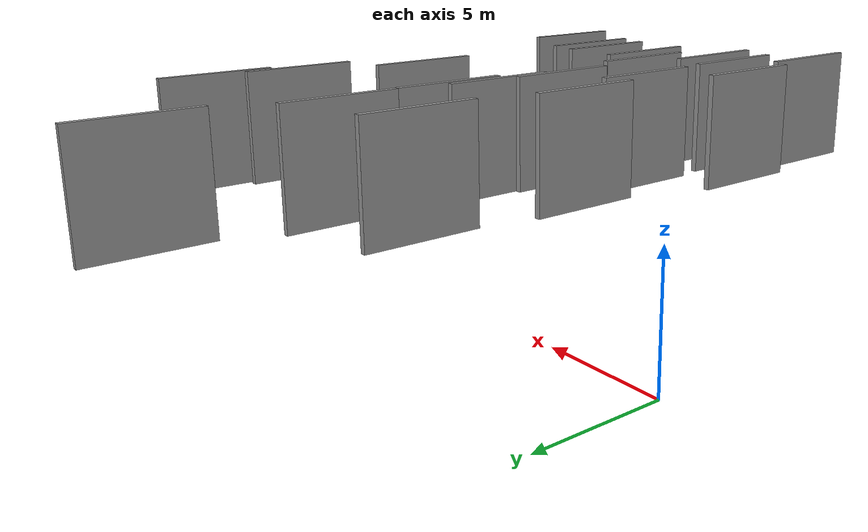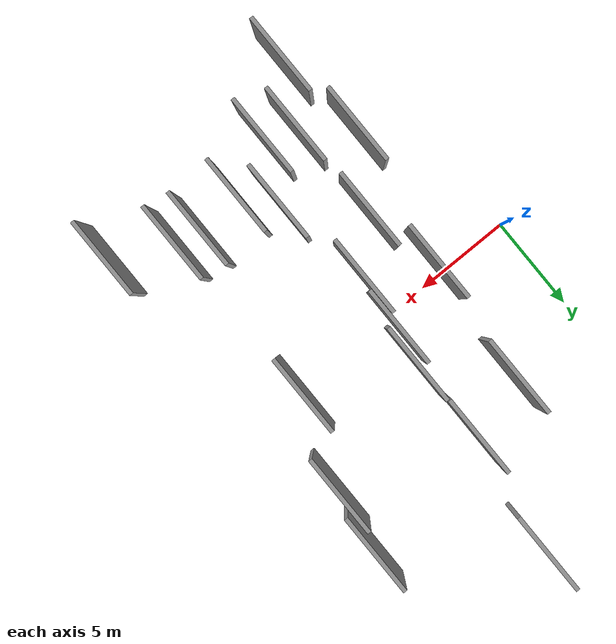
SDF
<sdf version="1.6">
 <world name="default">
  <scene>
   <sky><clouds><speed>12</speed></clouds></sky>
   <ambient>0.4 0.4 0.4 1</ambient>
   <background>0.7 0.7 0.7 1</background>
   <shadows>1</shadows>
  </scene>
  <gravity>0 0 -9.8066</gravity>
  <magnetic_field>6e-06 2.3e-05 -4.2e-05</magnetic_field>
  <physics default="0" name="default_physics" type="ode">
   <ode>
    <solver>
     <type>quick</type>
     <iters>10</iters>
     <sor>1.0</sor>
     <use_dynamic_moi_rescaling>0</use_dynamic_moi_rescaling>
    </solver>
    <constraints>
     <cfm>0</cfm>
     <erp>0.2</erp>
     <contact_max_correcting_vel>100</contact_max_correcting_vel>
     <contact_surface_layer>0.001</contact_surface_layer>
    </constraints>
   </ode>
   <max_step_size>0.004</max_step_size>
   <real_time_factor>1</real_time_factor>
   <real_time_update_rate>250</real_time_update_rate>
  </physics>
  <light name="sun" type="directional">
   <pose>0 0 10 0 0 0</pose>
   <diffuse>0.8 0.8 0.8 1</diffuse>
   <specular>0.2 0.2 0.2 1</specular>
   <attenuation>
    <range>1000</range>
    <constant>0.9</constant>
    <linear>0.01</linear>
    <quadratic>0.001</quadratic>
   </attenuation>
   <direction>-0.5 0.1 -0.9</direction>
  </light>
  <model name="grey_wall_1">
   <static>1</static>
   <pose>7.6312 6.1626 5.0 0.000000 0.000000 1.570796</pose>
   <link name="link">
    <pose>0 0 2.00 0 0 0</pose>
    <collision name="collision"><geometry><box><size>4.00 0.2 4.00</size></box></geometry></collision>
    <visual name="visual">
     <cast_shadows>0</cast_shadows>
     <geometry><box><size>4.00 0.2 4.00</size></box></geometry>
     <material>
      <script>
       <uri>model://grey_wall/materials/scripts</uri>
       <uri>model://grey_wall/materials/textures</uri>
       <name>vrc/grey_wall</name>
      </script>
     </material>
    </visual>
   </link>
  </model>
  <model name="grey_wall_2">
   <static>1</static>
   <pose>14.2399 7.2748 5.0 0.000000 0.000000 1.570796</pose>
   <link name="link">
    <pose>0 0 2.00 0 0 0</pose>
    <collision name="collision"><geometry><box><size>4.00 0.2 4.00</size></box></geometry></collision>
    <visual name="visual">
     <cast_shadows>0</cast_shadows>
     <geometry><box><size>4.00 0.2 4.00</size></box></geometry>
     <material>
      <script>
       <uri>model://grey_wall/materials/scripts</uri>
       <uri>model://grey_wall/materials/textures</uri>
       <name>vrc/grey_wall</name>
      </script>
     </material>
    </visual>
   </link>
  </model>
  <model name="grey_wall_3">
   <static>1</static>
   <pose>15.2729 -9.9006 5.0 0.000000 0.000000 1.570796</pose>
   <link name="link">
    <pose>0 0 2.00 0 0 0</pose>
    <collision name="collision"><geometry><box><size>4.00 0.2 4.00</size></box></geometry></collision>
    <visual name="visual">
     <cast_shadows>0</cast_shadows>
     <geometry><box><size>4.00 0.2 4.00</size></box></geometry>
     <material>
      <script>
       <uri>model://grey_wall/materials/scripts</uri>
       <uri>model://grey_wall/materials/textures</uri>
       <name>vrc/grey_wall</name>
      </script>
     </material>
    </visual>
   </link>
  </model>
  <model name="grey_wall_4">
   <static>1</static>
   <pose>12.3508 0.0581 5.0 0.000000 0.000000 1.570796</pose>
   <link name="link">
    <pose>0 0 2.00 0 0 0</pose>
    <collision name="collision"><geometry><box><size>4.00 0.2 4.00</size></box></geometry></collision>
    <visual name="visual">
     <cast_shadows>0</cast_shadows>
     <geometry><box><size>4.00 0.2 4.00</size></box></geometry>
     <material>
      <script>
       <uri>model://grey_wall/materials/scripts</uri>
       <uri>model://grey_wall/materials/textures</uri>
       <name>vrc/grey_wall</name>
      </script>
     </material>
    </visual>
   </link>
  </model>
  <model name="grey_wall_5">
   <static>1</static>
   <pose>7.6979 2.1255 5.0 0.000000 0.000000 1.570796</pose>
   <link name="link">
    <pose>0 0 2.00 0 0 0</pose>
    <collision name="collision"><geometry><box><size>4.00 0.2 4.00</size></box></geometry></collision>
    <visual name="visual">
     <cast_shadows>0</cast_shadows>
     <geometry><box><size>4.00 0.2 4.00</size></box></geometry>
     <material>
      <script>
       <uri>model://grey_wall/materials/scripts</uri>
       <uri>model://grey_wall/materials/textures</uri>
       <name>vrc/grey_wall</name>
      </script>
     </material>
    </visual>
   </link>
  </model>
  <model name="grey_wall_6">
   <static>1</static>
   <pose>7.9271 -7.0388 5.0 0.000000 0.000000 1.570796</pose>
   <link name="link">
    <pose>0 0 2.00 0 0 0</pose>
    <collision name="collision"><geometry><box><size>4.00 0.2 4.00</size></box></geometry></collision>
    <visual name="visual">
     <cast_shadows>0</cast_shadows>
     <geometry><box><size>4.00 0.2 4.00</size></box></geometry>
     <material>
      <script>
       <uri>model://grey_wall/materials/scripts</uri>
       <uri>model://grey_wall/materials/textures</uri>
       <name>vrc/grey_wall</name>
      </script>
     </material>
    </visual>
   </link>
  </model>
  <model name="grey_wall_7">
   <static>1</static>
   <pose>6.6702 -9.6324 5.0 0.000000 0.000000 1.570796</pose>
   <link name="link">
    <pose>0 0 2.00 0 0 0</pose>
    <collision name="collision"><geometry><box><size>4.00 0.2 4.00</size></box></geometry></collision>
    <visual name="visual">
     <cast_shadows>0</cast_shadows>
     <geometry><box><size>4.00 0.2 4.00</size></box></geometry>
     <material>
      <script>
       <uri>model://grey_wall/materials/scripts</uri>
       <uri>model://grey_wall/materials/textures</uri>
       <name>vrc/grey_wall</name>
      </script>
     </material>
    </visual>
   </link>
  </model>
  <model name="grey_wall_8">
   <static>1</static>
   <pose>5.1009 -4.2955 5.0 0.000000 0.000000 1.570796</pose>
   <link name="link">
    <pose>0 0 2.00 0 0 0</pose>
    <collision name="collision"><geometry><box><size>4.00 0.2 4.00</size></box></geometry></collision>
    <visual name="visual">
     <cast_shadows>0</cast_shadows>
     <geometry><box><size>4.00 0.2 4.00</size></box></geometry>
     <material>
      <script>
       <uri>model://grey_wall/materials/scripts</uri>
       <uri>model://grey_wall/materials/textures</uri>
       <name>vrc/grey_wall</name>
      </script>
     </material>
    </visual>
   </link>
  </model>
  <model name="grey_wall_9">
   <static>1</static>
   <pose>11.3215 -8.3103 5.0 0.000000 0.000000 1.570796</pose>
   <link name="link">
    <pose>0 0 2.00 0 0 0</pose>
    <collision name="collision"><geometry><box><size>4.00 0.2 4.00</size></box></geometry></collision>
    <visual name="visual">
     <cast_shadows>0</cast_shadows>
     <geometry><box><size>4.00 0.2 4.00</size></box></geometry>
     <material>
      <script>
       <uri>model://grey_wall/materials/scripts</uri>
       <uri>model://grey_wall/materials/textures</uri>
       <name>vrc/grey_wall</name>
      </script>
     </material>
    </visual>
   </link>
  </model>
  <model name="grey_wall_10">
   <static>1</static>
   <pose>3.8768 -11.8132 5.0 0.000000 0.000000 1.570796</pose>
   <link name="link">
    <pose>0 0 2.00 0 0 0</pose>
    <collision name="collision"><geometry><box><size>4.00 0.2 4.00</size></box></geometry></collision>
    <visual name="visual">
     <cast_shadows>0</cast_shadows>
     <geometry><box><size>4.00 0.2 4.00</size></box></geometry>
     <material>
      <script>
       <uri>model://grey_wall/materials/scripts</uri>
       <uri>model://grey_wall/materials/textures</uri>
       <name>vrc/grey_wall</name>
      </script>
     </material>
    </visual>
   </link>
  </model>
  <model name="grey_wall_11">
   <static>1</static>
   <pose>13.8396 4.3691 5.0 0.000000 0.000000 1.570796</pose>
   <link name="link">
    <pose>0 0 2.00 0 0 0</pose>
    <collision name="collision"><geometry><box><size>4.00 0.2 4.00</size></box></geometry></collision>
    <visual name="visual">
     <cast_shadows>0</cast_shadows>
     <geometry><box><size>4.00 0.2 4.00</size></box></geometry>
     <material>
      <script>
       <uri>model://grey_wall/materials/scripts</uri>
       <uri>model://grey_wall/materials/textures</uri>
       <name>vrc/grey_wall</name>
      </script>
     </material>
    </visual>
   </link>
  </model>
  <model name="grey_wall_12">
   <static>1</static>
   <pose>4.6870 5.2621 5.0 0.000000 0.000000 1.570796</pose>
   <link name="link">
    <pose>0 0 2.00 0 0 0</pose>
    <collision name="collision"><geometry><box><size>4.00 0.2 4.00</size></box></geometry></collision>
    <visual name="visual">
     <cast_shadows>0</cast_shadows>
     <geometry><box><size>4.00 0.2 4.00</size></box></geometry>
     <material>
      <script>
       <uri>model://grey_wall/materials/scripts</uri>
       <uri>model://grey_wall/materials/textures</uri>
       <name>vrc/grey_wall</name>
      </script>
     </material>
    </visual>
   </link>
  </model>
  <model name="grey_wall_13">
   <static>1</static>
   <pose>5.2660 -9.1162 5.0 0.000000 0.000000 1.570796</pose>
   <link name="link">
    <pose>0 0 2.00 0 0 0</pose>
    <collision name="collision"><geometry><box><size>4.00 0.2 4.00</size></box></geometry></collision>
    <visual name="visual">
     <cast_shadows>0</cast_shadows>
     <geometry><box><size>4.00 0.2 4.00</size></box></geometry>
     <material>
      <script>
       <uri>model://grey_wall/materials/scripts</uri>
       <uri>model://grey_wall/materials/textures</uri>
       <name>vrc/grey_wall</name>
      </script>
     </material>
    </visual>
   </link>
  </model>
  <model name="grey_wall_14">
   <static>1</static>
   <pose>12.5361 -8.5242 5.0 0.000000 0.000000 1.570796</pose>
   <link name="link">
    <pose>0 0 2.00 0 0 0</pose>
    <collision name="collision"><geometry><box><size>4.00 0.2 4.00</size></box></geometry></collision>
    <visual name="visual">
     <cast_shadows>0</cast_shadows>
     <geometry><box><size>4.00 0.2 4.00</size></box></geometry>
     <material>
      <script>
       <uri>model://grey_wall/materials/scripts</uri>
       <uri>model://grey_wall/materials/textures</uri>
       <name>vrc/grey_wall</name>
      </script>
     </material>
    </visual>
   </link>
  </model>
  <model name="grey_wall_15">
   <static>1</static>
   <pose>3.2069 -7.4612 5.0 0.000000 0.000000 1.570796</pose>
   <link name="link">
    <pose>0 0 2.00 0 0 0</pose>
    <collision name="collision"><geometry><box><size>4.00 0.2 4.00</size></box></geometry></collision>
    <visual name="visual">
     <cast_shadows>0</cast_shadows>
     <geometry><box><size>4.00 0.2 4.00</size></box></geometry>
     <material>
      <script>
       <uri>model://grey_wall/materials/scripts</uri>
       <uri>model://grey_wall/materials/textures</uri>
       <name>vrc/grey_wall</name>
      </script>
     </material>
    </visual>
   </link>
  </model>
  <model name="grey_wall_16">
   <static>1</static>
   <pose>7.3102 0.3777 5.0 0.000000 0.000000 1.570796</pose>
   <link name="link">
    <pose>0 0 2.00 0 0 0</pose>
    <collision name="collision"><geometry><box><size>4.00 0.2 4.00</size></box></geometry></collision>
    <visual name="visual">
     <cast_shadows>0</cast_shadows>
     <geometry><box><size>4.00 0.2 4.00</size></box></geometry>
     <material>
      <script>
       <uri>model://grey_wall/materials/scripts</uri>
       <uri>model://grey_wall/materials/textures</uri>
       <name>vrc/grey_wall</name>
      </script>
     </material>
    </visual>
   </link>
  </model>
  <model name="grey_wall_17">
   <static>1</static>
   <pose>8.5092 11.8847 5.0 0.000000 0.000000 1.570796</pose>
   <link name="link">
    <pose>0 0 2.00 0 0 0</pose>
    <collision name="collision"><geometry><box><size>4.00 0.2 4.00</size></box></geometry></collision>
    <visual name="visual">
     <cast_shadows>0</cast_shadows>
     <geometry><box><size>4.00 0.2 4.00</size></box></geometry>
     <material>
      <script>
       <uri>model://grey_wall/materials/scripts</uri>
       <uri>model://grey_wall/materials/textures</uri>
       <name>vrc/grey_wall</name>
      </script>
     </material>
    </visual>
   </link>
  </model>
  <model name="grey_wall_18">
   <static>1</static>
   <pose>9.1544 -8.3654 5.0 0.000000 0.000000 1.570796</pose>
   <link name="link">
    <pose>0 0 2.00 0 0 0</pose>
    <collision name="collision"><geometry><box><size>4.00 0.2 4.00</size></box></geometry></collision>
    <visual name="visual">
     <cast_shadows>0</cast_shadows>
     <geometry><box><size>4.00 0.2 4.00</size></box></geometry>
     <material>
      <script>
       <uri>model://grey_wall/materials/scripts</uri>
       <uri>model://grey_wall/materials/textures</uri>
       <name>vrc/grey_wall</name>
      </script>
     </material>
    </visual>
   </link>
  </model>
  <model name="grey_wall_19">
   <static>1</static>
   <pose>4.2270 -0.7098 5.0 0.000000 0.000000 1.570796</pose>
   <link name="link">
    <pose>0 0 2.00 0 0 0</pose>
    <collision name="collision"><geometry><box><size>4.00 0.2 4.00</size></box></geometry></collision>
    <visual name="visual">
     <cast_shadows>0</cast_shadows>
     <geometry><box><size>4.00 0.2 4.00</size></box></geometry>
     <material>
      <script>
       <uri>model://grey_wall/materials/scripts</uri>
       <uri>model://grey_wall/materials/textures</uri>
       <name>vrc/grey_wall</name>
      </script>
     </material>
    </visual>
   </link>
  </model>
  <model name="grey_wall_20">
   <static>1</static>
   <pose>7.0996 -2.2356 5.0 0.000000 0.000000 1.570796</pose>
   <link name="link">
    <pose>0 0 2.00 0 0 0</pose>
    <collision name="collision"><geometry><box><size>4.00 0.2 4.00</size></box></geometry></collision>
    <visual name="visual">
     <cast_shadows>0</cast_shadows>
     <geometry><box><size>4.00 0.2 4.00</size></box></geometry>
     <material>
      <script>
       <uri>model://grey_wall/materials/scripts</uri>
       <uri>model://grey_wall/materials/textures</uri>
       <name>vrc/grey_wall</name>
      </script>
     </material>
    </visual>
   </link>
  </model>
 </world>
</sdf>
